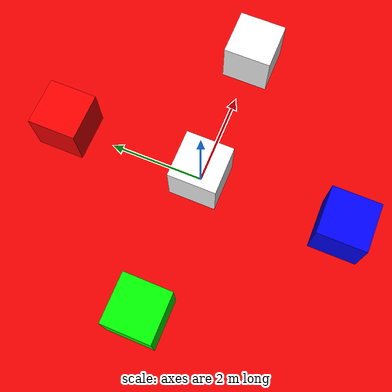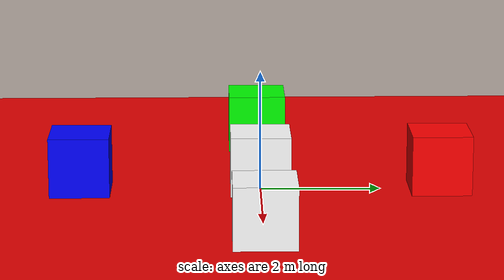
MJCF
<mujoco>
  <compiler texturedir="asset"/>

  <asset>
    <texture name="texaruco" type="2d" file="5x5_1000-1.png"/>
    <material name="mataruco" texture="texaruco"/>
  </asset>

  <visual>
    <quality offsamples="0"/>
  </visual>

  <option gravity = "0 0 -9.81" />
   <worldbody>
      <light diffuse="1 1 1" pos="0 0 20" dir="0 0 -1"/>
			<geom type="plane" size="10 10 0.1" rgba=".9 0 0 1"/>
      <body name="robot" pos="0 0 0.5" euler="0 0 0">
        <joint name="robot_joint" type="hinge" axis = "0 0 1" pos = "0 0 -0.5"/>
				<geom type="box" size=".5 .5 .5" rgba="1 1 1 1" mass="10"/>
        <camera name="robot_camera" pos="0.5 0 0" euler="0 -90 270"/>

        <!-- From depthCamera.dae https://github.com/unitreerobotics/unitree_ros/blob/6a7a9609cebd853062f2182f97dcfbdb711cd61a/robots/go1_description/meshes/depthCamera.dae#L56 -->

        <!-- From go1.urdf https://github.com/unitreerobotics/unitree_ros/blob/6a7a9609cebd853062f2182f97dcfbdb711cd61a/robots/go1_description/urdf/go1.urdf#L1348C22-L1348C33 -->

      </body>
      <body name='obstacle1' pos="3 0 0.5" euler="0 0 0">
				<joint name='joint1' type='slide' axis='0 1 0' pos = '0 0 0'/>
				<geom type="box" size=".5 .5 .5" material="mataruco" euler="0 90 0" rgba="1 1 1 1" mass="10"/>
        <camera name="obstacle_camera1" pos="0 0 1" zaxis="0 0 1"/>
      </body>
      <body name='obstacle2' pos="0 3 0.5" euler="0 0 0">
				<joint name='joint2' type='slide' axis='1 0 0' pos = '0 0 0'/>
				<geom type="box" size=".5 .5 .5" rgba="1 0 0 1" mass="10"/>
        <camera name="obstacle_camera2" pos="0 0 1" zaxis="0 0 1"/>
      </body>
      <body name='obstacle3' pos="-3 0 0.5" euler="0 0 0">
				<joint name='joint3' type='slide' axis='1 0 0' pos = '0 0 0'/>
				<geom type="box" size=".5 .5 .5" rgba="0 1 0 1" mass="10"/>
        <camera name="obstacle_camera3" pos="0 0 1" zaxis="0 0 1"/>
      </body>
      <body name='obstacle4' pos="0 -3 0.5" euler="0 0 0">
				<joint name='joint4' type='slide' axis='1 0 0' pos = '0 0 0'/>
				<geom type="box" size=".5 .5 .5" rgba="0 0 1 1" mass="10"/>
        <camera name="obstacle_camera4" pos="0 0 1" zaxis="0 0 1"/>
      </body>
    </worldbody>

    <actuator>
      <motor name="force" joint="robot_joint"  gear="1" />
    </actuator>
</mujoco>
